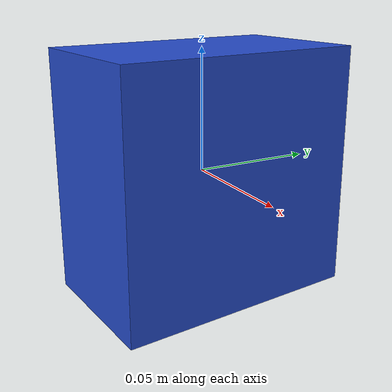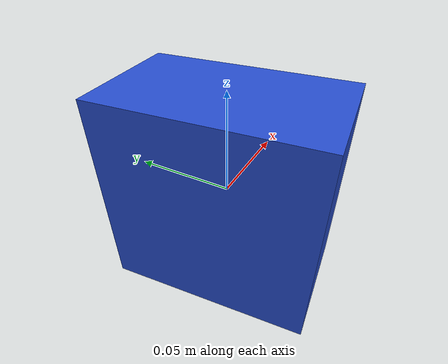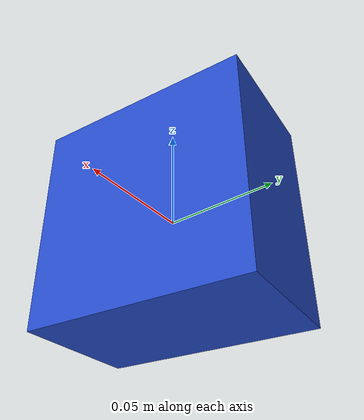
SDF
<sdf version="1.6"><model name="model_16"><static>true</static><link name="link"><pose>0 0 0 0 0 1.6593639547975063</pose><collision name="collision"><geometry><box><size>0.10064618043104118 0.05980506974899783 0.1</size></box></geometry></collision><visual name="visual"><geometry><box><size>0.10064618043104118 0.05980506974899783 0.1</size></box></geometry><material><script><name>Gazebo/Blue</name><uri>file://media/materials/scripts/gazebo.material</uri></script></material></visual></link></model></sdf>
